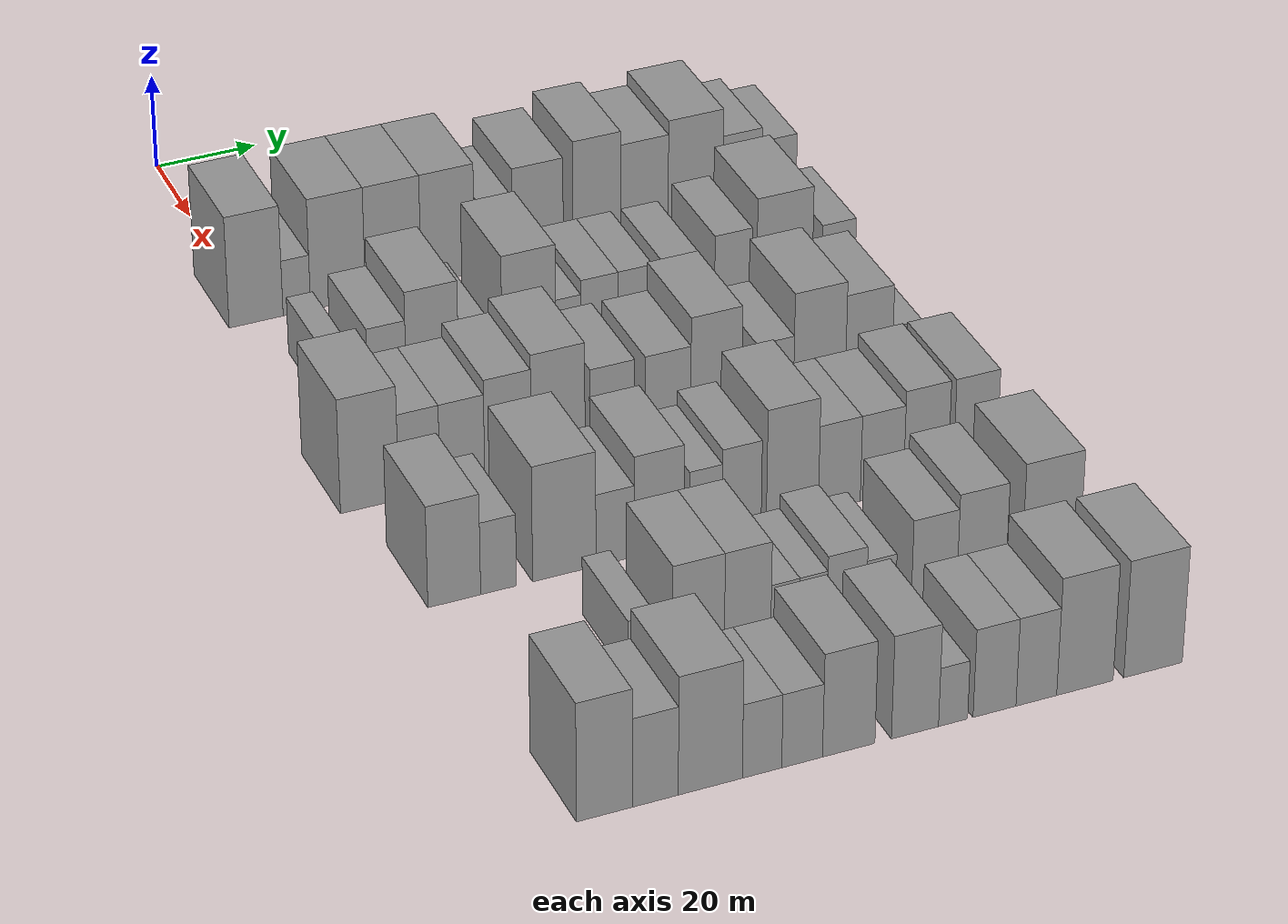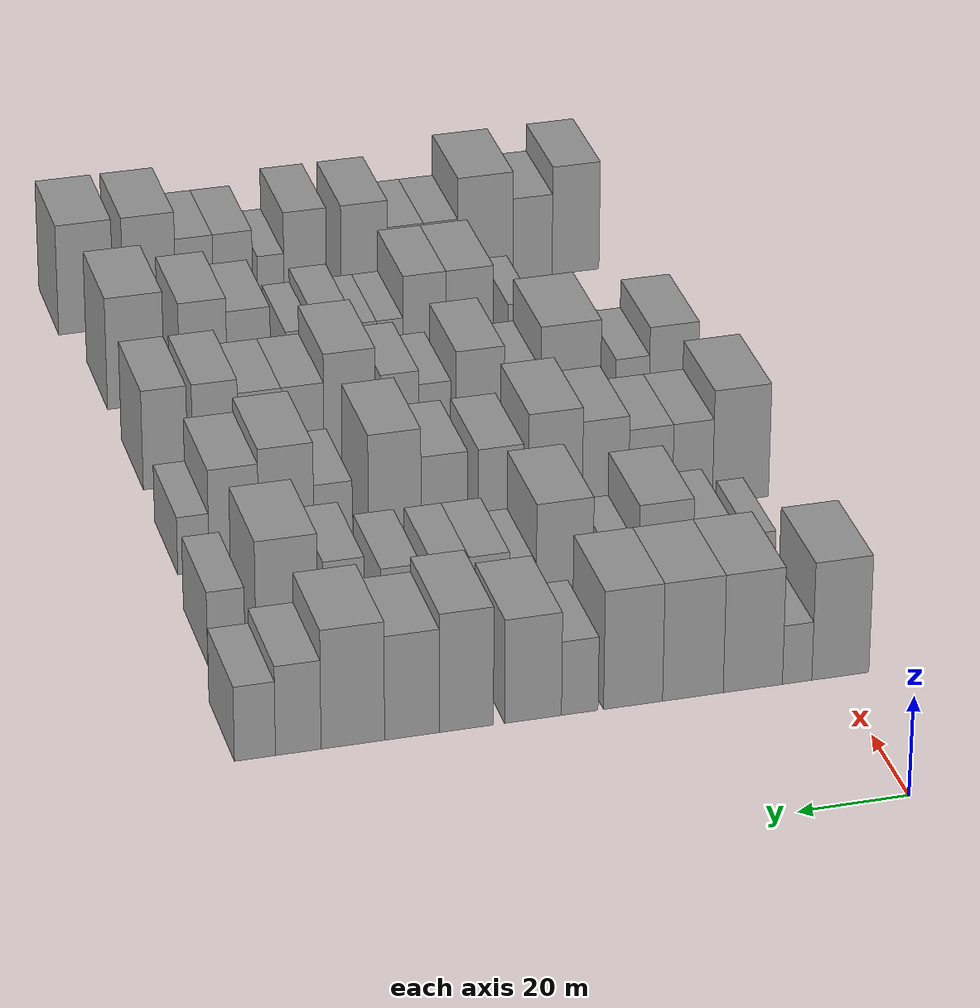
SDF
<sdf version="1.6">
 <world name="default">
  <model name="building_63">
   <static>1</static>
   <pose>50.0000 -0.7746 0 0.000000 0.000000 0.000000</pose>
   <link name="link">
    <pose>0 0 12.00 0 0 0</pose>
    <collision name="collision"><geometry><box><size>20.0000 10.5817 24.0000</size></box></geometry></collision>
    <visual name="visual">
     <cast_shadows>0</cast_shadows>
     <geometry><box><size>20.0000 10.5817 24.0000</size></box></geometry>
     <material>
      <script>
       <uri>model://grey_wall/materials/scripts</uri>
       <uri>model://grey_wall/materials/textures</uri>
       <name>vrc/grey_wall</name>
      </script>
     </material>
    </visual>
   </link>
  </model>
  <model name="building_64">
   <static>1</static>
   <pose>50.0000 7.2375 0 0.000000 0.000000 0.000000</pose>
   <link name="link">
    <pose>0 0 6.00 0 0 0</pose>
    <collision name="collision"><geometry><box><size>20.0000 5.4426 12.0000</size></box></geometry></collision>
    <visual name="visual">
     <cast_shadows>0</cast_shadows>
     <geometry><box><size>20.0000 5.4426 12.0000</size></box></geometry>
     <material>
      <script>
       <uri>model://grey_wall/materials/scripts</uri>
       <uri>model://grey_wall/materials/textures</uri>
       <name>vrc/grey_wall</name>
      </script>
     </material>
    </visual>
   </link>
  </model>
  <model name="building_65">
   <static>1</static>
   <pose>50.0000 15.4123 0 0.000000 0.000000 0.000000</pose>
   <link name="link">
    <pose>0 0 12.00 0 0 0</pose>
    <collision name="collision"><geometry><box><size>20.0000 10.9069 24.0000</size></box></geometry></collision>
    <visual name="visual">
     <cast_shadows>0</cast_shadows>
     <geometry><box><size>20.0000 10.9069 24.0000</size></box></geometry>
     <material>
      <script>
       <uri>model://grey_wall/materials/scripts</uri>
       <uri>model://grey_wall/materials/textures</uri>
       <name>vrc/grey_wall</name>
      </script>
     </material>
    </visual>
   </link>
  </model>
  <model name="building_66">
   <static>1</static>
   <pose>50.0000 26.4303 0 0.000000 0.000000 0.000000</pose>
   <link name="link">
    <pose>0 0 12.00 0 0 0</pose>
    <collision name="collision"><geometry><box><size>20.0000 11.1291 24.0000</size></box></geometry></collision>
    <visual name="visual">
     <cast_shadows>0</cast_shadows>
     <geometry><box><size>20.0000 11.1291 24.0000</size></box></geometry>
     <material>
      <script>
       <uri>model://grey_wall/materials/scripts</uri>
       <uri>model://grey_wall/materials/textures</uri>
       <name>vrc/grey_wall</name>
      </script>
     </material>
    </visual>
   </link>
  </model>
  <model name="building_67">
   <static>1</static>
   <pose>50.0000 37.3804 0 0.000000 0.000000 0.000000</pose>
   <link name="link">
    <pose>0 0 12.00 0 0 0</pose>
    <collision name="collision"><geometry><box><size>20.0000 10.7711 24.0000</size></box></geometry></collision>
    <visual name="visual">
     <cast_shadows>0</cast_shadows>
     <geometry><box><size>20.0000 10.7711 24.0000</size></box></geometry>
     <material>
      <script>
       <uri>model://grey_wall/materials/scripts</uri>
       <uri>model://grey_wall/materials/textures</uri>
       <name>vrc/grey_wall</name>
      </script>
     </material>
    </visual>
   </link>
  </model>
  <model name="building_68">
   <static>1</static>
   <pose>50.0000 47.0913 0 0.000000 0.000000 0.000000</pose>
   <link name="link">
    <pose>0 0 7.50 0 0 0</pose>
    <collision name="collision"><geometry><box><size>20.0000 6.6505 15.0000</size></box></geometry></collision>
    <visual name="visual">
     <cast_shadows>0</cast_shadows>
     <geometry><box><size>20.0000 6.6505 15.0000</size></box></geometry>
     <material>
      <script>
       <uri>model://grey_wall/materials/scripts</uri>
       <uri>model://grey_wall/materials/textures</uri>
       <name>vrc/grey_wall</name>
      </script>
     </material>
    </visual>
   </link>
  </model>
  <model name="building_69">
   <static>1</static>
   <pose>50.0000 55.5728 0 0.000000 0.000000 0.000000</pose>
   <link name="link">
    <pose>0 0 10.50 0 0 0</pose>
    <collision name="collision"><geometry><box><size>20.0000 10.3126 21.0000</size></box></geometry></collision>
    <visual name="visual">
     <cast_shadows>0</cast_shadows>
     <geometry><box><size>20.0000 10.3126 21.0000</size></box></geometry>
     <material>
      <script>
       <uri>model://grey_wall/materials/scripts</uri>
       <uri>model://grey_wall/materials/textures</uri>
       <name>vrc/grey_wall</name>
      </script>
     </material>
    </visual>
   </link>
  </model>
  <model name="building_70">
   <static>1</static>
   <pose>50.0000 67.6036 0 0.000000 0.000000 0.000000</pose>
   <link name="link">
    <pose>0 0 12.00 0 0 0</pose>
    <collision name="collision"><geometry><box><size>20.0000 9.7489 24.0000</size></box></geometry></collision>
    <visual name="visual">
     <cast_shadows>0</cast_shadows>
     <geometry><box><size>20.0000 9.7489 24.0000</size></box></geometry>
     <material>
      <script>
       <uri>model://grey_wall/materials/scripts</uri>
       <uri>model://grey_wall/materials/textures</uri>
       <name>vrc/grey_wall</name>
      </script>
     </material>
    </visual>
   </link>
  </model>
  <model name="building_71">
   <static>1</static>
   <pose>50.0000 77.3796 0 0.000000 0.000000 0.000000</pose>
   <link name="link">
    <pose>0 0 10.50 0 0 0</pose>
    <collision name="collision"><geometry><box><size>20.0000 9.8032 21.0000</size></box></geometry></collision>
    <visual name="visual">
     <cast_shadows>0</cast_shadows>
     <geometry><box><size>20.0000 9.8032 21.0000</size></box></geometry>
     <material>
      <script>
       <uri>model://grey_wall/materials/scripts</uri>
       <uri>model://grey_wall/materials/textures</uri>
       <name>vrc/grey_wall</name>
      </script>
     </material>
    </visual>
   </link>
  </model>
  <model name="building_72">
   <static>1</static>
   <pose>50.0000 87.9492 0 0.000000 0.000000 0.000000</pose>
   <link name="link">
    <pose>0 0 12.00 0 0 0</pose>
    <collision name="collision"><geometry><box><size>20.0000 11.3358 24.0000</size></box></geometry></collision>
    <visual name="visual">
     <cast_shadows>0</cast_shadows>
     <geometry><box><size>20.0000 11.3358 24.0000</size></box></geometry>
     <material>
      <script>
       <uri>model://grey_wall/materials/scripts</uri>
       <uri>model://grey_wall/materials/textures</uri>
       <name>vrc/grey_wall</name>
      </script>
     </material>
    </visual>
   </link>
  </model>
  <model name="building_73">
   <static>1</static>
   <pose>50.0000 97.6649 0 0.000000 0.000000 0.000000</pose>
   <link name="link">
    <pose>0 0 9.00 0 0 0</pose>
    <collision name="collision"><geometry><box><size>20.0000 8.0957 18.0000</size></box></geometry></collision>
    <visual name="visual">
     <cast_shadows>0</cast_shadows>
     <geometry><box><size>20.0000 8.0957 18.0000</size></box></geometry>
     <material>
      <script>
       <uri>model://grey_wall/materials/scripts</uri>
       <uri>model://grey_wall/materials/textures</uri>
       <name>vrc/grey_wall</name>
      </script>
     </material>
    </visual>
   </link>
  </model>
  <model name="building_74">
   <static>1</static>
   <pose>50.0000 105.3468 0 0.000000 0.000000 0.000000</pose>
   <link name="link">
    <pose>0 0 7.50 0 0 0</pose>
    <collision name="collision"><geometry><box><size>20.0000 7.2680 15.0000</size></box></geometry></collision>
    <visual name="visual">
     <cast_shadows>0</cast_shadows>
     <geometry><box><size>20.0000 7.2680 15.0000</size></box></geometry>
     <material>
      <script>
       <uri>model://grey_wall/materials/scripts</uri>
       <uri>model://grey_wall/materials/textures</uri>
       <name>vrc/grey_wall</name>
      </script>
     </material>
    </visual>
   </link>
  </model>
  <model name="building_184">
   <static>1</static>
   <pose>82.0000 3.8384 0 0.000000 0.000000 0.000000</pose>
   <link name="link">
    <pose>0 0 6.00 0 0 0</pose>
    <collision name="collision"><geometry><box><size>20.0000 5.0956 12.0000</size></box></geometry></collision>
    <visual name="visual">
     <cast_shadows>0</cast_shadows>
     <geometry><box><size>20.0000 5.0956 12.0000</size></box></geometry>
     <material>
      <script>
       <uri>model://grey_wall/materials/scripts</uri>
       <uri>model://grey_wall/materials/textures</uri>
       <name>vrc/grey_wall</name>
      </script>
     </material>
    </visual>
   </link>
  </model>
  <model name="building_185">
   <static>1</static>
   <pose>82.0000 13.1138 0 0.000000 0.000000 0.000000</pose>
   <link name="link">
    <pose>0 0 7.50 0 0 0</pose>
    <collision name="collision"><geometry><box><size>20.0000 7.4552 15.0000</size></box></geometry></collision>
    <visual name="visual">
     <cast_shadows>0</cast_shadows>
     <geometry><box><size>20.0000 7.4552 15.0000</size></box></geometry>
     <material>
      <script>
       <uri>model://grey_wall/materials/scripts</uri>
       <uri>model://grey_wall/materials/textures</uri>
       <name>vrc/grey_wall</name>
      </script>
     </material>
    </visual>
   </link>
  </model>
  <model name="building_186">
   <static>1</static>
   <pose>82.0000 21.9345 0 0.000000 0.000000 0.000000</pose>
   <link name="link">
    <pose>0 0 10.50 0 0 0</pose>
    <collision name="collision"><geometry><box><size>20.0000 10.1861 21.0000</size></box></geometry></collision>
    <visual name="visual">
     <cast_shadows>0</cast_shadows>
     <geometry><box><size>20.0000 10.1861 21.0000</size></box></geometry>
     <material>
      <script>
       <uri>model://grey_wall/materials/scripts</uri>
       <uri>model://grey_wall/materials/textures</uri>
       <name>vrc/grey_wall</name>
      </script>
     </material>
    </visual>
   </link>
  </model>
  <model name="building_187">
   <static>1</static>
   <pose>82.0000 29.8064 0 0.000000 0.000000 0.000000</pose>
   <link name="link">
    <pose>0 0 6.00 0 0 0</pose>
    <collision name="collision"><geometry><box><size>20.0000 5.5578 12.0000</size></box></geometry></collision>
    <visual name="visual">
     <cast_shadows>0</cast_shadows>
     <geometry><box><size>20.0000 5.5578 12.0000</size></box></geometry>
     <material>
      <script>
       <uri>model://grey_wall/materials/scripts</uri>
       <uri>model://grey_wall/materials/textures</uri>
       <name>vrc/grey_wall</name>
      </script>
     </material>
    </visual>
   </link>
  </model>
  <model name="building_188">
   <static>1</static>
   <pose>82.0000 40.8626 0 0.000000 0.000000 0.000000</pose>
   <link name="link">
    <pose>0 0 12.00 0 0 0</pose>
    <collision name="collision"><geometry><box><size>20.0000 10.5546 24.0000</size></box></geometry></collision>
    <visual name="visual">
     <cast_shadows>0</cast_shadows>
     <geometry><box><size>20.0000 10.5546 24.0000</size></box></geometry>
     <material>
      <script>
       <uri>model://grey_wall/materials/scripts</uri>
       <uri>model://grey_wall/materials/textures</uri>
       <name>vrc/grey_wall</name>
      </script>
     </material>
    </visual>
   </link>
  </model>
  <model name="building_189">
   <static>1</static>
   <pose>82.0000 48.6339 0 0.000000 0.000000 0.000000</pose>
   <link name="link">
    <pose>0 0 6.00 0 0 0</pose>
    <collision name="collision"><geometry><box><size>20.0000 4.9879 12.0000</size></box></geometry></collision>
    <visual name="visual">
     <cast_shadows>0</cast_shadows>
     <geometry><box><size>20.0000 4.9879 12.0000</size></box></geometry>
     <material>
      <script>
       <uri>model://grey_wall/materials/scripts</uri>
       <uri>model://grey_wall/materials/textures</uri>
       <name>vrc/grey_wall</name>
      </script>
     </material>
    </visual>
   </link>
  </model>
  <model name="building_190">
   <static>1</static>
   <pose>82.0000 54.8418 0 0.000000 0.000000 0.000000</pose>
   <link name="link">
    <pose>0 0 7.50 0 0 0</pose>
    <collision name="collision"><geometry><box><size>20.0000 7.4280 15.0000</size></box></geometry></collision>
    <visual name="visual">
     <cast_shadows>0</cast_shadows>
     <geometry><box><size>20.0000 7.4280 15.0000</size></box></geometry>
     <material>
      <script>
       <uri>model://grey_wall/materials/scripts</uri>
       <uri>model://grey_wall/materials/textures</uri>
       <name>vrc/grey_wall</name>
      </script>
     </material>
    </visual>
   </link>
  </model>
  <model name="building_191">
   <static>1</static>
   <pose>82.0000 61.9880 0 0.000000 0.000000 0.000000</pose>
   <link name="link">
    <pose>0 0 7.50 0 0 0</pose>
    <collision name="collision"><geometry><box><size>20.0000 6.8645 15.0000</size></box></geometry></collision>
    <visual name="visual">
     <cast_shadows>0</cast_shadows>
     <geometry><box><size>20.0000 6.8645 15.0000</size></box></geometry>
     <material>
      <script>
       <uri>model://grey_wall/materials/scripts</uri>
       <uri>model://grey_wall/materials/textures</uri>
       <name>vrc/grey_wall</name>
      </script>
     </material>
    </visual>
   </link>
  </model>
  <model name="building_192">
   <static>1</static>
   <pose>82.0000 71.1349 0 0.000000 0.000000 0.000000</pose>
   <link name="link">
    <pose>0 0 7.50 0 0 0</pose>
    <collision name="collision"><geometry><box><size>20.0000 7.4292 15.0000</size></box></geometry></collision>
    <visual name="visual">
     <cast_shadows>0</cast_shadows>
     <geometry><box><size>20.0000 7.4292 15.0000</size></box></geometry>
     <material>
      <script>
       <uri>model://grey_wall/materials/scripts</uri>
       <uri>model://grey_wall/materials/textures</uri>
       <name>vrc/grey_wall</name>
      </script>
     </material>
    </visual>
   </link>
  </model>
  <model name="building_193">
   <static>1</static>
   <pose>82.0000 81.6111 0 0.000000 0.000000 0.000000</pose>
   <link name="link">
    <pose>0 0 9.00 0 0 0</pose>
    <collision name="collision"><geometry><box><size>20.0000 7.5232 18.0000</size></box></geometry></collision>
    <visual name="visual">
     <cast_shadows>0</cast_shadows>
     <geometry><box><size>20.0000 7.5232 18.0000</size></box></geometry>
     <material>
      <script>
       <uri>model://grey_wall/materials/scripts</uri>
       <uri>model://grey_wall/materials/textures</uri>
       <name>vrc/grey_wall</name>
      </script>
     </material>
    </visual>
   </link>
  </model>
  <model name="building_194">
   <static>1</static>
   <pose>82.0000 92.0338 0 0.000000 0.000000 0.000000</pose>
   <link name="link">
    <pose>0 0 12.00 0 0 0</pose>
    <collision name="collision"><geometry><box><size>20.0000 11.3222 24.0000</size></box></geometry></collision>
    <visual name="visual">
     <cast_shadows>0</cast_shadows>
     <geometry><box><size>20.0000 11.3222 24.0000</size></box></geometry>
     <material>
      <script>
       <uri>model://grey_wall/materials/scripts</uri>
       <uri>model://grey_wall/materials/textures</uri>
       <name>vrc/grey_wall</name>
      </script>
     </material>
    </visual>
   </link>
  </model>
  <model name="building_195">
   <static>1</static>
   <pose>82.0000 103.1036 0 0.000000 0.000000 0.000000</pose>
   <link name="link">
    <pose>0 0 7.50 0 0 0</pose>
    <collision name="collision"><geometry><box><size>20.0000 6.8174 15.0000</size></box></geometry></collision>
    <visual name="visual">
     <cast_shadows>0</cast_shadows>
     <geometry><box><size>20.0000 6.8174 15.0000</size></box></geometry>
     <material>
      <script>
       <uri>model://grey_wall/materials/scripts</uri>
       <uri>model://grey_wall/materials/textures</uri>
       <name>vrc/grey_wall</name>
      </script>
     </material>
    </visual>
   </link>
  </model>
  <model name="building_304">
   <static>1</static>
   <pose>114.0000 -2.2634 0 0.000000 0.000000 0.000000</pose>
   <link name="link">
    <pose>0 0 12.00 0 0 0</pose>
    <collision name="collision"><geometry><box><size>20.0000 10.9393 24.0000</size></box></geometry></collision>
    <visual name="visual">
     <cast_shadows>0</cast_shadows>
     <geometry><box><size>20.0000 10.9393 24.0000</size></box></geometry>
     <material>
      <script>
       <uri>model://grey_wall/materials/scripts</uri>
       <uri>model://grey_wall/materials/textures</uri>
       <name>vrc/grey_wall</name>
      </script>
     </material>
    </visual>
   </link>
  </model>
  <model name="building_305">
   <static>1</static>
   <pose>114.0000 7.0948 0 0.000000 0.000000 0.000000</pose>
   <link name="link">
    <pose>0 0 9.00 0 0 0</pose>
    <collision name="collision"><geometry><box><size>20.0000 7.7770 18.0000</size></box></geometry></collision>
    <visual name="visual">
     <cast_shadows>0</cast_shadows>
     <geometry><box><size>20.0000 7.7770 18.0000</size></box></geometry>
     <material>
      <script>
       <uri>model://grey_wall/materials/scripts</uri>
       <uri>model://grey_wall/materials/textures</uri>
       <name>vrc/grey_wall</name>
      </script>
     </material>
    </visual>
   </link>
  </model>
  <model name="building_306">
   <static>1</static>
   <pose>114.0000 15.2341 0 0.000000 0.000000 0.000000</pose>
   <link name="link">
    <pose>0 0 9.00 0 0 0</pose>
    <collision name="collision"><geometry><box><size>20.0000 8.5017 18.0000</size></box></geometry></collision>
    <visual name="visual">
     <cast_shadows>0</cast_shadows>
     <geometry><box><size>20.0000 8.5017 18.0000</size></box></geometry>
     <material>
      <script>
       <uri>model://grey_wall/materials/scripts</uri>
       <uri>model://grey_wall/materials/textures</uri>
       <name>vrc/grey_wall</name>
      </script>
     </material>
    </visual>
   </link>
  </model>
  <model name="building_307">
   <static>1</static>
   <pose>114.0000 23.9409 0 0.000000 0.000000 0.000000</pose>
   <link name="link">
    <pose>0 0 10.50 0 0 0</pose>
    <collision name="collision"><geometry><box><size>20.0000 8.9120 21.0000</size></box></geometry></collision>
    <visual name="visual">
     <cast_shadows>0</cast_shadows>
     <geometry><box><size>20.0000 8.9120 21.0000</size></box></geometry>
     <material>
      <script>
       <uri>model://grey_wall/materials/scripts</uri>
       <uri>model://grey_wall/materials/textures</uri>
       <name>vrc/grey_wall</name>
      </script>
     </material>
    </visual>
   </link>
  </model>
  <model name="building_308">
   <static>1</static>
   <pose>114.0000 33.5465 0 0.000000 0.000000 0.000000</pose>
   <link name="link">
    <pose>0 0 12.00 0 0 0</pose>
    <collision name="collision"><geometry><box><size>20.0000 10.2993 24.0000</size></box></geometry></collision>
    <visual name="visual">
     <cast_shadows>0</cast_shadows>
     <geometry><box><size>20.0000 10.2993 24.0000</size></box></geometry>
     <material>
      <script>
       <uri>model://grey_wall/materials/scripts</uri>
       <uri>model://grey_wall/materials/textures</uri>
       <name>vrc/grey_wall</name>
      </script>
     </material>
    </visual>
   </link>
  </model>
  <model name="building_309">
   <static>1</static>
   <pose>114.0000 44.0004 0 0.000000 0.000000 0.000000</pose>
   <link name="link">
    <pose>0 0 9.00 0 0 0</pose>
    <collision name="collision"><geometry><box><size>20.0000 8.6085 18.0000</size></box></geometry></collision>
    <visual name="visual">
     <cast_shadows>0</cast_shadows>
     <geometry><box><size>20.0000 8.6085 18.0000</size></box></geometry>
     <material>
      <script>
       <uri>model://grey_wall/materials/scripts</uri>
       <uri>model://grey_wall/materials/textures</uri>
       <name>vrc/grey_wall</name>
      </script>
     </material>
    </visual>
   </link>
  </model>
  <model name="building_310">
   <static>1</static>
   <pose>114.0000 54.7427 0 0.000000 0.000000 0.000000</pose>
   <link name="link">
    <pose>0 0 9.00 0 0 0</pose>
    <collision name="collision"><geometry><box><size>20.0000 8.8761 18.0000</size></box></geometry></collision>
    <visual name="visual">
     <cast_shadows>0</cast_shadows>
     <geometry><box><size>20.0000 8.8761 18.0000</size></box></geometry>
     <material>
      <script>
       <uri>model://grey_wall/materials/scripts</uri>
       <uri>model://grey_wall/materials/textures</uri>
       <name>vrc/grey_wall</name>
      </script>
     </material>
    </visual>
   </link>
  </model>
  <model name="building_311">
   <static>1</static>
   <pose>114.0000 64.1549 0 0.000000 0.000000 0.000000</pose>
   <link name="link">
    <pose>0 0 12.00 0 0 0</pose>
    <collision name="collision"><geometry><box><size>20.0000 9.9483 24.0000</size></box></geometry></collision>
    <visual name="visual">
     <cast_shadows>0</cast_shadows>
     <geometry><box><size>20.0000 9.9483 24.0000</size></box></geometry>
     <material>
      <script>
       <uri>model://grey_wall/materials/scripts</uri>
       <uri>model://grey_wall/materials/textures</uri>
       <name>vrc/grey_wall</name>
      </script>
     </material>
    </visual>
   </link>
  </model>
  <model name="building_312">
   <static>1</static>
   <pose>114.0000 75.7566 0 0.000000 0.000000 0.000000</pose>
   <link name="link">
    <pose>0 0 7.50 0 0 0</pose>
    <collision name="collision"><geometry><box><size>20.0000 7.2550 15.0000</size></box></geometry></collision>
    <visual name="visual">
     <cast_shadows>0</cast_shadows>
     <geometry><box><size>20.0000 7.2550 15.0000</size></box></geometry>
     <material>
      <script>
       <uri>model://grey_wall/materials/scripts</uri>
       <uri>model://grey_wall/materials/textures</uri>
       <name>vrc/grey_wall</name>
      </script>
     </material>
    </visual>
   </link>
  </model>
  <model name="building_313">
   <static>1</static>
   <pose>114.0000 84.5432 0 0.000000 0.000000 0.000000</pose>
   <link name="link">
    <pose>0 0 12.00 0 0 0</pose>
    <collision name="collision"><geometry><box><size>20.0000 10.3181 24.0000</size></box></geometry></collision>
    <visual name="visual">
     <cast_shadows>0</cast_shadows>
     <geometry><box><size>20.0000 10.3181 24.0000</size></box></geometry>
     <material>
      <script>
       <uri>model://grey_wall/materials/scripts</uri>
       <uri>model://grey_wall/materials/textures</uri>
       <name>vrc/grey_wall</name>
      </script>
     </material>
    </visual>
   </link>
  </model>
  <model name="building_314">
   <static>1</static>
   <pose>114.0000 94.3654 0 0.000000 0.000000 0.000000</pose>
   <link name="link">
    <pose>0 0 10.50 0 0 0</pose>
    <collision name="collision"><geometry><box><size>20.0000 9.3264 21.0000</size></box></geometry></collision>
    <visual name="visual">
     <cast_shadows>0</cast_shadows>
     <geometry><box><size>20.0000 9.3264 21.0000</size></box></geometry>
     <material>
      <script>
       <uri>model://grey_wall/materials/scripts</uri>
       <uri>model://grey_wall/materials/textures</uri>
       <name>vrc/grey_wall</name>
      </script>
     </material>
    </visual>
   </link>
  </model>
  <model name="building_315">
   <static>1</static>
   <pose>114.0000 101.9718 0 0.000000 0.000000 0.000000</pose>
   <link name="link">
    <pose>0 0 6.00 0 0 0</pose>
    <collision name="collision"><geometry><box><size>20.0000 5.8865 12.0000</size></box></geometry></collision>
    <visual name="visual">
     <cast_shadows>0</cast_shadows>
     <geometry><box><size>20.0000 5.8865 12.0000</size></box></geometry>
     <material>
      <script>
       <uri>model://grey_wall/materials/scripts</uri>
       <uri>model://grey_wall/materials/textures</uri>
       <name>vrc/grey_wall</name>
      </script>
     </material>
    </visual>
   </link>
  </model>
  <model name="building_415">
   <static>1</static>
   <pose>146.0000 1.2237 0 0.000000 0.000000 0.000000</pose>
   <link name="link">
    <pose>0 0 10.50 0 0 0</pose>
    <collision name="collision"><geometry><box><size>20.0000 9.6899 21.0000</size></box></geometry></collision>
    <visual name="visual">
     <cast_shadows>0</cast_shadows>
     <geometry><box><size>20.0000 9.6899 21.0000</size></box></geometry>
     <material>
      <script>
       <uri>model://grey_wall/materials/scripts</uri>
       <uri>model://grey_wall/materials/textures</uri>
       <name>vrc/grey_wall</name>
      </script>
     </material>
    </visual>
   </link>
  </model>
  <model name="building_416">
   <static>1</static>
   <pose>146.0000 9.3791 0 0.000000 0.000000 0.000000</pose>
   <link name="link">
    <pose>0 0 7.50 0 0 0</pose>
    <collision name="collision"><geometry><box><size>20.0000 6.6209 15.0000</size></box></geometry></collision>
    <visual name="visual">
     <cast_shadows>0</cast_shadows>
     <geometry><box><size>20.0000 6.6209 15.0000</size></box></geometry>
     <material>
      <script>
       <uri>model://grey_wall/materials/scripts</uri>
       <uri>model://grey_wall/materials/textures</uri>
       <name>vrc/grey_wall</name>
      </script>
     </material>
    </visual>
   </link>
  </model>
  <model name="building_417">
   <static>1</static>
   <pose>146.0000 21.5888 0 0.000000 0.000000 0.000000</pose>
   <link name="link">
    <pose>0 0 12.00 0 0 0</pose>
    <collision name="collision"><geometry><box><size>20.0000 11.7985 24.0000</size></box></geometry></collision>
    <visual name="visual">
     <cast_shadows>0</cast_shadows>
     <geometry><box><size>20.0000 11.7985 24.0000</size></box></geometry>
     <material>
      <script>
       <uri>model://grey_wall/materials/scripts</uri>
       <uri>model://grey_wall/materials/textures</uri>
       <name>vrc/grey_wall</name>
      </script>
     </material>
    </visual>
   </link>
  </model>
  <model name="building_418">
   <static>1</static>
   <pose>146.0000 31.0629 0 0.000000 0.000000 0.000000</pose>
   <link name="link">
    <pose>0 0 7.50 0 0 0</pose>
    <collision name="collision"><geometry><box><size>20.0000 7.1497 15.0000</size></box></geometry></collision>
    <visual name="visual">
     <cast_shadows>0</cast_shadows>
     <geometry><box><size>20.0000 7.1497 15.0000</size></box></geometry>
     <material>
      <script>
       <uri>model://grey_wall/materials/scripts</uri>
       <uri>model://grey_wall/materials/textures</uri>
       <name>vrc/grey_wall</name>
      </script>
     </material>
    </visual>
   </link>
  </model>
  <model name="building_419">
   <static>1</static>
   <pose>146.0000 39.3427 0 0.000000 0.000000 0.000000</pose>
   <link name="link">
    <pose>0 0 10.50 0 0 0</pose>
    <collision name="collision"><geometry><box><size>20.0000 9.4098 21.0000</size></box></geometry></collision>
    <visual name="visual">
     <cast_shadows>0</cast_shadows>
     <geometry><box><size>20.0000 9.4098 21.0000</size></box></geometry>
     <material>
      <script>
       <uri>model://grey_wall/materials/scripts</uri>
       <uri>model://grey_wall/materials/textures</uri>
       <name>vrc/grey_wall</name>
      </script>
     </material>
    </visual>
   </link>
  </model>
  <model name="building_420">
   <static>1</static>
   <pose>146.0000 48.1651 0 0.000000 0.000000 0.000000</pose>
   <link name="link">
    <pose>0 0 7.50 0 0 0</pose>
    <collision name="collision"><geometry><box><size>20.0000 6.2350 15.0000</size></box></geometry></collision>
    <visual name="visual">
     <cast_shadows>0</cast_shadows>
     <geometry><box><size>20.0000 6.2350 15.0000</size></box></geometry>
     <material>
      <script>
       <uri>model://grey_wall/materials/scripts</uri>
       <uri>model://grey_wall/materials/textures</uri>
       <name>vrc/grey_wall</name>
      </script>
     </material>
    </visual>
   </link>
  </model>
  <model name="building_421">
   <static>1</static>
   <pose>146.0000 54.9974 0 0.000000 0.000000 0.000000</pose>
   <link name="link">
    <pose>0 0 9.00 0 0 0</pose>
    <collision name="collision"><geometry><box><size>20.0000 7.4296 18.0000</size></box></geometry></collision>
    <visual name="visual">
     <cast_shadows>0</cast_shadows>
     <geometry><box><size>20.0000 7.4296 18.0000</size></box></geometry>
     <material>
      <script>
       <uri>model://grey_wall/materials/scripts</uri>
       <uri>model://grey_wall/materials/textures</uri>
       <name>vrc/grey_wall</name>
      </script>
     </material>
    </visual>
   </link>
  </model>
  <model name="building_422">
   <static>1</static>
   <pose>146.0000 64.7015 0 0.000000 0.000000 0.000000</pose>
   <link name="link">
    <pose>0 0 12.00 0 0 0</pose>
    <collision name="collision"><geometry><box><size>20.0000 9.9786 24.0000</size></box></geometry></collision>
    <visual name="visual">
     <cast_shadows>0</cast_shadows>
     <geometry><box><size>20.0000 9.9786 24.0000</size></box></geometry>
     <material>
      <script>
       <uri>model://grey_wall/materials/scripts</uri>
       <uri>model://grey_wall/materials/textures</uri>
       <name>vrc/grey_wall</name>
      </script>
     </material>
    </visual>
   </link>
  </model>
  <model name="building_423">
   <static>1</static>
   <pose>146.0000 73.7558 0 0.000000 0.000000 0.000000</pose>
   <link name="link">
    <pose>0 0 9.00 0 0 0</pose>
    <collision name="collision"><geometry><box><size>20.0000 8.1301 18.0000</size></box></geometry></collision>
    <visual name="visual">
     <cast_shadows>0</cast_shadows>
     <geometry><box><size>20.0000 8.1301 18.0000</size></box></geometry>
     <material>
      <script>
       <uri>model://grey_wall/materials/scripts</uri>
       <uri>model://grey_wall/materials/textures</uri>
       <name>vrc/grey_wall</name>
      </script>
     </material>
    </visual>
   </link>
  </model>
  <model name="building_424">
   <static>1</static>
   <pose>146.0000 82.0110 0 0.000000 0.000000 0.000000</pose>
   <link name="link">
    <pose>0 0 9.00 0 0 0</pose>
    <collision name="collision"><geometry><box><size>20.0000 8.3802 18.0000</size></box></geometry></collision>
    <visual name="visual">
     <cast_shadows>0</cast_shadows>
     <geometry><box><size>20.0000 8.3802 18.0000</size></box></geometry>
     <material>
      <script>
       <uri>model://grey_wall/materials/scripts</uri>
       <uri>model://grey_wall/materials/textures</uri>
       <name>vrc/grey_wall</name>
      </script>
     </material>
    </visual>
   </link>
  </model>
  <model name="building_425">
   <static>1</static>
   <pose>146.0000 90.5546 0 0.000000 0.000000 0.000000</pose>
   <link name="link">
    <pose>0 0 10.50 0 0 0</pose>
    <collision name="collision"><geometry><box><size>20.0000 8.7070 21.0000</size></box></geometry></collision>
    <visual name="visual">
     <cast_shadows>0</cast_shadows>
     <geometry><box><size>20.0000 8.7070 21.0000</size></box></geometry>
     <material>
      <script>
       <uri>model://grey_wall/materials/scripts</uri>
       <uri>model://grey_wall/materials/textures</uri>
       <name>vrc/grey_wall</name>
      </script>
     </material>
    </visual>
   </link>
  </model>
  <model name="building_426">
   <static>1</static>
   <pose>146.0000 100.1917 0 0.000000 0.000000 0.000000</pose>
   <link name="link">
    <pose>0 0 10.50 0 0 0</pose>
    <collision name="collision"><geometry><box><size>20.0000 8.5671 21.0000</size></box></geometry></collision>
    <visual name="visual">
     <cast_shadows>0</cast_shadows>
     <geometry><box><size>20.0000 8.5671 21.0000</size></box></geometry>
     <material>
      <script>
       <uri>model://grey_wall/materials/scripts</uri>
       <uri>model://grey_wall/materials/textures</uri>
       <name>vrc/grey_wall</name>
      </script>
     </material>
    </visual>
   </link>
  </model>
  <model name="building_535">
   <static>1</static>
   <pose>178.0000 22.5498 0 0.000000 0.000000 0.000000</pose>
   <link name="link">
    <pose>0 0 6.00 0 0 0</pose>
    <collision name="collision"><geometry><box><size>20.0000 5.1262 12.0000</size></box></geometry></collision>
    <visual name="visual">
     <cast_shadows>0</cast_shadows>
     <geometry><box><size>20.0000 5.1262 12.0000</size></box></geometry>
     <material>
      <script>
       <uri>model://grey_wall/materials/scripts</uri>
       <uri>model://grey_wall/materials/textures</uri>
       <name>vrc/grey_wall</name>
      </script>
     </material>
    </visual>
   </link>
  </model>
  <model name="building_536">
   <static>1</static>
   <pose>178.0000 32.8530 0 0.000000 0.000000 0.000000</pose>
   <link name="link">
    <pose>0 0 10.50 0 0 0</pose>
    <collision name="collision"><geometry><box><size>20.0000 9.4803 21.0000</size></box></geometry></collision>
    <visual name="visual">
     <cast_shadows>0</cast_shadows>
     <geometry><box><size>20.0000 9.4803 21.0000</size></box></geometry>
     <material>
      <script>
       <uri>model://grey_wall/materials/scripts</uri>
       <uri>model://grey_wall/materials/textures</uri>
       <name>vrc/grey_wall</name>
      </script>
     </material>
    </visual>
   </link>
  </model>
  <model name="building_537">
   <static>1</static>
   <pose>178.0000 41.8807 0 0.000000 0.000000 0.000000</pose>
   <link name="link">
    <pose>0 0 10.50 0 0 0</pose>
    <collision name="collision"><geometry><box><size>20.0000 8.5750 21.0000</size></box></geometry></collision>
    <visual name="visual">
     <cast_shadows>0</cast_shadows>
     <geometry><box><size>20.0000 8.5750 21.0000</size></box></geometry>
     <material>
      <script>
       <uri>model://grey_wall/materials/scripts</uri>
       <uri>model://grey_wall/materials/textures</uri>
       <name>vrc/grey_wall</name>
      </script>
     </material>
    </visual>
   </link>
  </model>
  <model name="building_538">
   <static>1</static>
   <pose>178.0000 48.8132 0 0.000000 0.000000 0.000000</pose>
   <link name="link">
    <pose>0 0 6.00 0 0 0</pose>
    <collision name="collision"><geometry><box><size>20.0000 5.2901 12.0000</size></box></geometry></collision>
    <visual name="visual">
     <cast_shadows>0</cast_shadows>
     <geometry><box><size>20.0000 5.2901 12.0000</size></box></geometry>
     <material>
      <script>
       <uri>model://grey_wall/materials/scripts</uri>
       <uri>model://grey_wall/materials/textures</uri>
       <name>vrc/grey_wall</name>
      </script>
     </material>
    </visual>
   </link>
  </model>
  <model name="building_539">
   <static>1</static>
   <pose>178.0000 54.0547 0 0.000000 0.000000 0.000000</pose>
   <link name="link">
    <pose>0 0 6.00 0 0 0</pose>
    <collision name="collision"><geometry><box><size>20.0000 5.1930 12.0000</size></box></geometry></collision>
    <visual name="visual">
     <cast_shadows>0</cast_shadows>
     <geometry><box><size>20.0000 5.1930 12.0000</size></box></geometry>
     <material>
      <script>
       <uri>model://grey_wall/materials/scripts</uri>
       <uri>model://grey_wall/materials/textures</uri>
       <name>vrc/grey_wall</name>
      </script>
     </material>
    </visual>
   </link>
  </model>
  <model name="building_540">
   <static>1</static>
   <pose>178.0000 60.3125 0 0.000000 0.000000 0.000000</pose>
   <link name="link">
    <pose>0 0 7.50 0 0 0</pose>
    <collision name="collision"><geometry><box><size>20.0000 7.3225 15.0000</size></box></geometry></collision>
    <visual name="visual">
     <cast_shadows>0</cast_shadows>
     <geometry><box><size>20.0000 7.3225 15.0000</size></box></geometry>
     <material>
      <script>
       <uri>model://grey_wall/materials/scripts</uri>
       <uri>model://grey_wall/materials/textures</uri>
       <name>vrc/grey_wall</name>
      </script>
     </material>
    </visual>
   </link>
  </model>
  <model name="building_541">
   <static>1</static>
   <pose>178.0000 66.7202 0 0.000000 0.000000 0.000000</pose>
   <link name="link">
    <pose>0 0 6.00 0 0 0</pose>
    <collision name="collision"><geometry><box><size>20.0000 5.4929 12.0000</size></box></geometry></collision>
    <visual name="visual">
     <cast_shadows>0</cast_shadows>
     <geometry><box><size>20.0000 5.4929 12.0000</size></box></geometry>
     <material>
      <script>
       <uri>model://grey_wall/materials/scripts</uri>
       <uri>model://grey_wall/materials/textures</uri>
       <name>vrc/grey_wall</name>
      </script>
     </material>
    </visual>
   </link>
  </model>
  <model name="building_542">
   <static>1</static>
   <pose>178.0000 76.7749 0 0.000000 0.000000 0.000000</pose>
   <link name="link">
    <pose>0 0 9.00 0 0 0</pose>
    <collision name="collision"><geometry><box><size>20.0000 8.6165 18.0000</size></box></geometry></collision>
    <visual name="visual">
     <cast_shadows>0</cast_shadows>
     <geometry><box><size>20.0000 8.6165 18.0000</size></box></geometry>
     <material>
      <script>
       <uri>model://grey_wall/materials/scripts</uri>
       <uri>model://grey_wall/materials/textures</uri>
       <name>vrc/grey_wall</name>
      </script>
     </material>
    </visual>
   </link>
  </model>
  <model name="building_543">
   <static>1</static>
   <pose>178.0000 85.7597 0 0.000000 0.000000 0.000000</pose>
   <link name="link">
    <pose>0 0 10.50 0 0 0</pose>
    <collision name="collision"><geometry><box><size>20.0000 9.3530 21.0000</size></box></geometry></collision>
    <visual name="visual">
     <cast_shadows>0</cast_shadows>
     <geometry><box><size>20.0000 9.3530 21.0000</size></box></geometry>
     <material>
      <script>
       <uri>model://grey_wall/materials/scripts</uri>
       <uri>model://grey_wall/materials/textures</uri>
       <name>vrc/grey_wall</name>
      </script>
     </material>
    </visual>
   </link>
  </model>
  <model name="building_544">
   <static>1</static>
   <pose>178.0000 99.0305 0 0.000000 0.000000 0.000000</pose>
   <link name="link">
    <pose>0 0 12.00 0 0 0</pose>
    <collision name="collision"><geometry><box><size>20.0000 11.1885 24.0000</size></box></geometry></collision>
    <visual name="visual">
     <cast_shadows>0</cast_shadows>
     <geometry><box><size>20.0000 11.1885 24.0000</size></box></geometry>
     <material>
      <script>
       <uri>model://grey_wall/materials/scripts</uri>
       <uri>model://grey_wall/materials/textures</uri>
       <name>vrc/grey_wall</name>
      </script>
     </material>
    </visual>
   </link>
  </model>
  <model name="building_650">
   <static>1</static>
   <pose>210.0000 2.3407 0 0.000000 0.000000 0.000000</pose>
   <link name="link">
    <pose>0 0 12.00 0 0 0</pose>
    <collision name="collision"><geometry><box><size>20.0000 9.7606 24.0000</size></box></geometry></collision>
    <visual name="visual">
     <cast_shadows>0</cast_shadows>
     <geometry><box><size>20.0000 9.7606 24.0000</size></box></geometry>
     <material>
      <script>
       <uri>model://grey_wall/materials/scripts</uri>
       <uri>model://grey_wall/materials/textures</uri>
       <name>vrc/grey_wall</name>
      </script>
     </material>
    </visual>
   </link>
  </model>
  <model name="building_651">
   <static>1</static>
   <pose>210.0000 11.2899 0 0.000000 0.000000 0.000000</pose>
   <link name="link">
    <pose>0 0 9.00 0 0 0</pose>
    <collision name="collision"><geometry><box><size>20.0000 8.1377 18.0000</size></box></geometry></collision>
    <visual name="visual">
     <cast_shadows>0</cast_shadows>
     <geometry><box><size>20.0000 8.1377 18.0000</size></box></geometry>
     <material>
      <script>
       <uri>model://grey_wall/materials/scripts</uri>
       <uri>model://grey_wall/materials/textures</uri>
       <name>vrc/grey_wall</name>
      </script>
     </material>
    </visual>
   </link>
  </model>
  <model name="building_652">
   <static>1</static>
   <pose>210.0000 21.0483 0 0.000000 0.000000 0.000000</pose>
   <link name="link">
    <pose>0 0 12.00 0 0 0</pose>
    <collision name="collision"><geometry><box><size>20.0000 11.3790 24.0000</size></box></geometry></collision>
    <visual name="visual">
     <cast_shadows>0</cast_shadows>
     <geometry><box><size>20.0000 11.3790 24.0000</size></box></geometry>
     <material>
      <script>
       <uri>model://grey_wall/materials/scripts</uri>
       <uri>model://grey_wall/materials/textures</uri>
       <name>vrc/grey_wall</name>
      </script>
     </material>
    </visual>
   </link>
  </model>
  <model name="building_653">
   <static>1</static>
   <pose>210.0000 30.2663 0 0.000000 0.000000 0.000000</pose>
   <link name="link">
    <pose>0 0 7.50 0 0 0</pose>
    <collision name="collision"><geometry><box><size>20.0000 7.0569 15.0000</size></box></geometry></collision>
    <visual name="visual">
     <cast_shadows>0</cast_shadows>
     <geometry><box><size>20.0000 7.0569 15.0000</size></box></geometry>
     <material>
      <script>
       <uri>model://grey_wall/materials/scripts</uri>
       <uri>model://grey_wall/materials/textures</uri>
       <name>vrc/grey_wall</name>
      </script>
     </material>
    </visual>
   </link>
  </model>
  <model name="building_654">
   <static>1</static>
   <pose>210.0000 37.4700 0 0.000000 0.000000 0.000000</pose>
   <link name="link">
    <pose>0 0 7.50 0 0 0</pose>
    <collision name="collision"><geometry><box><size>20.0000 7.3506 15.0000</size></box></geometry></collision>
    <visual name="visual">
     <cast_shadows>0</cast_shadows>
     <geometry><box><size>20.0000 7.3506 15.0000</size></box></geometry>
     <material>
      <script>
       <uri>model://grey_wall/materials/scripts</uri>
       <uri>model://grey_wall/materials/textures</uri>
       <name>vrc/grey_wall</name>
      </script>
     </material>
    </visual>
   </link>
  </model>
  <model name="building_655">
   <static>1</static>
   <pose>210.0000 45.8940 0 0.000000 0.000000 0.000000</pose>
   <link name="link">
    <pose>0 0 10.50 0 0 0</pose>
    <collision name="collision"><geometry><box><size>20.0000 9.4973 21.0000</size></box></geometry></collision>
    <visual name="visual">
     <cast_shadows>0</cast_shadows>
     <geometry><box><size>20.0000 9.4973 21.0000</size></box></geometry>
     <material>
      <script>
       <uri>model://grey_wall/materials/scripts</uri>
       <uri>model://grey_wall/materials/textures</uri>
       <name>vrc/grey_wall</name>
      </script>
     </material>
    </visual>
   </link>
  </model>
  <model name="building_656">
   <static>1</static>
   <pose>210.0000 57.9511 0 0.000000 0.000000 0.000000</pose>
   <link name="link">
    <pose>0 0 10.50 0 0 0</pose>
    <collision name="collision"><geometry><box><size>20.0000 8.6170 21.0000</size></box></geometry></collision>
    <visual name="visual">
     <cast_shadows>0</cast_shadows>
     <geometry><box><size>20.0000 8.6170 21.0000</size></box></geometry>
     <material>
      <script>
       <uri>model://grey_wall/materials/scripts</uri>
       <uri>model://grey_wall/materials/textures</uri>
       <name>vrc/grey_wall</name>
      </script>
     </material>
    </visual>
   </link>
  </model>
  <model name="building_657">
   <static>1</static>
   <pose>210.0000 64.9376 0 0.000000 0.000000 0.000000</pose>
   <link name="link">
    <pose>0 0 6.00 0 0 0</pose>
    <collision name="collision"><geometry><box><size>20.0000 5.3559 12.0000</size></box></geometry></collision>
    <visual name="visual">
     <cast_shadows>0</cast_shadows>
     <geometry><box><size>20.0000 5.3559 12.0000</size></box></geometry>
     <material>
      <script>
       <uri>model://grey_wall/materials/scripts</uri>
       <uri>model://grey_wall/materials/textures</uri>
       <name>vrc/grey_wall</name>
      </script>
     </material>
    </visual>
   </link>
  </model>
  <model name="building_658">
   <static>1</static>
   <pose>210.0000 72.5832 0 0.000000 0.000000 0.000000</pose>
   <link name="link">
    <pose>0 0 9.00 0 0 0</pose>
    <collision name="collision"><geometry><box><size>20.0000 7.9353 18.0000</size></box></geometry></collision>
    <visual name="visual">
     <cast_shadows>0</cast_shadows>
     <geometry><box><size>20.0000 7.9353 18.0000</size></box></geometry>
     <material>
      <script>
       <uri>model://grey_wall/materials/scripts</uri>
       <uri>model://grey_wall/materials/textures</uri>
       <name>vrc/grey_wall</name>
      </script>
     </material>
    </visual>
   </link>
  </model>
  <model name="building_659">
   <static>1</static>
   <pose>210.0000 80.3401 0 0.000000 0.000000 0.000000</pose>
   <link name="link">
    <pose>0 0 9.00 0 0 0</pose>
    <collision name="collision"><geometry><box><size>20.0000 7.5785 18.0000</size></box></geometry></collision>
    <visual name="visual">
     <cast_shadows>0</cast_shadows>
     <geometry><box><size>20.0000 7.5785 18.0000</size></box></geometry>
     <material>
      <script>
       <uri>model://grey_wall/materials/scripts</uri>
       <uri>model://grey_wall/materials/textures</uri>
       <name>vrc/grey_wall</name>
      </script>
     </material>
    </visual>
   </link>
  </model>
  <model name="building_660">
   <static>1</static>
   <pose>210.0000 89.4110 0 0.000000 0.000000 0.000000</pose>
   <link name="link">
    <pose>0 0 12.00 0 0 0</pose>
    <collision name="collision"><geometry><box><size>20.0000 10.5634 24.0000</size></box></geometry></collision>
    <visual name="visual">
     <cast_shadows>0</cast_shadows>
     <geometry><box><size>20.0000 10.5634 24.0000</size></box></geometry>
     <material>
      <script>
       <uri>model://grey_wall/materials/scripts</uri>
       <uri>model://grey_wall/materials/textures</uri>
       <name>vrc/grey_wall</name>
      </script>
     </material>
    </visual>
   </link>
  </model>
  <model name="building_661">
   <static>1</static>
   <pose>210.0000 102.2222 0 0.000000 0.000000 0.000000</pose>
   <link name="link">
    <pose>0 0 12.00 0 0 0</pose>
    <collision name="collision"><geometry><box><size>20.0000 11.0589 24.0000</size></box></geometry></collision>
    <visual name="visual">
     <cast_shadows>0</cast_shadows>
     <geometry><box><size>20.0000 11.0589 24.0000</size></box></geometry>
     <material>
      <script>
       <uri>model://grey_wall/materials/scripts</uri>
       <uri>model://grey_wall/materials/textures</uri>
       <name>vrc/grey_wall</name>
      </script>
     </material>
    </visual>
   </link>
  </model>
 </world>
</sdf>
